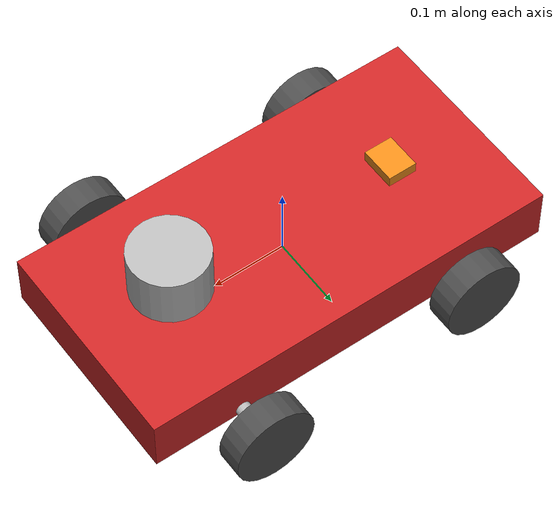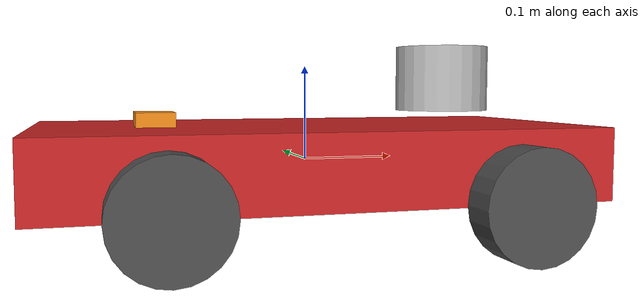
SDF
<sdf version='1.9'>
  <model name='arv'>
    <link name='base_link'>
      <inertial>
        <pose>0 0 0 0 0 0</pose>
        <mass>2.2999999999999998</mass>
        <inertia>
          <ixx>0.01719729166666667</ixx>
          <ixy>0</ixy>
          <ixz>0</ixz>
          <iyy>0.06335062499999998</iyy>
          <iyz>0</iyz>
          <izz>0.06335062499999998</izz>
        </inertia>
      </inertial>
      <collision name='base_link_collision'>
        <pose>0 0 0 0 0 0</pose>
        <geometry>
          <box>
            <size>0.57 0.29 0.075</size>
          </box>
        </geometry>
        <surface>
          <contact>
            <ode/>
          </contact>
          <friction>
            <ode/>
          </friction>
        </surface>
      </collision>
      <visual name='base_link_visual'>
        <pose>0 0 0 0 0 0</pose>
        <geometry>
          <box>
            <size>0.57 0.29 0.075</size>
          </box>
        </geometry>
        <material>
          <script>
            <name>Gazebo/Red</name>
            <uri>file://media/materials/scripts/gazebo.material</uri>
          </script>
          <diffuse>1 0 0.125 1</diffuse>
          <ambient>1 0 0.125 1</ambient>
        </material>
      </visual>
    </link>
    <joint name='LEFT_HINGE_JOINT' type='revolute'>
      <pose relative_to='base_link'>0.162 0.16 -0.0295 -1.570796326794896 0 0</pose>
      <parent>base_link</parent>
      <child>LEFT_HINGE</child>
      <axis>
        <xyz>0 -1 0</xyz>
        <limit>
          <lower>-0.53000000000000003</lower>
          <upper>0.53000000000000003</upper>
          <effort>100</effort>
          <velocity>1</velocity>
        </limit>
        <dynamics>
          <damping>0</damping>
          <friction>0</friction>
          <spring_reference>0</spring_reference>
          <spring_stiffness>0</spring_stiffness>
        </dynamics>
      </axis>
    </joint>
    <link name='LEFT_HINGE'>
      <pose relative_to='LEFT_HINGE_JOINT'>0 0 0 0 0 0</pose>
      <inertial>
        <pose>0 0 0 0 0 0</pose>
        <mass>0.029999999999999999</mass>
        <inertia>
          <ixx>3.0000000000000001e-06</ixx>
          <ixy>0</ixy>
          <ixz>0</ixz>
          <iyy>3.0000000000000001e-06</iyy>
          <iyz>0</iyz>
          <izz>1.5e-06</izz>
        </inertia>
      </inertial>
      <visual name='LEFT_HINGE_visual'>
        <pose>0 0 0 0 0 0</pose>
        <geometry>
          <cylinder>
            <length>0.029999999999999999</length>
            <radius>0.01</radius>
          </cylinder>
        </geometry>
      </visual>
    </link>
    <joint name='LEFT_FRONT_WHEEL_JOINT' type='revolute'>
      <pose relative_to='LEFT_HINGE'>0 0 0.0335 0 0 0</pose>
      <parent>LEFT_HINGE</parent>
      <child>LEFT_FRONT_WHEEL</child>
      <axis>
        <xyz>0 0 1</xyz>
        <limit>
          <effort>100</effort>
          <velocity>200</velocity>
          <lower>-10000000000000000</lower>
          <upper>10000000000000000</upper>
        </limit>
        <dynamics>
          <damping>0</damping>
          <friction>0</friction>
          <spring_reference>0</spring_reference>
          <spring_stiffness>0</spring_stiffness>
        </dynamics>
      </axis>
    </joint>
    <link name='LEFT_FRONT_WHEEL'>
      <pose relative_to='LEFT_FRONT_WHEEL_JOINT'>0 0 0 0 0 0</pose>
      <inertial>
        <pose>0 0 0 0 0 0</pose>
        <mass>0.080000000000000002</mass>
        <inertia>
          <ixx>6.9626666666666669e-05</ixx>
          <ixy>0</ixy>
          <ixz>0</ixz>
          <iyy>6.9626666666666669e-05</iyy>
          <iyz>0</iyz>
          <izz>0.000121</izz>
        </inertia>
      </inertial>
      <collision name='LEFT_FRONT_WHEEL_collision'>
        <pose>0 0 0 0 0 0</pose>
        <geometry>
          <cylinder>
            <length>0.036999999999999998</length>
            <radius>0.055</radius>
          </cylinder>
        </geometry>
        <surface>
          <contact>
            <ode>
              <kp>10000000</kp>
              <kd>1</kd>
              <max_vel>100</max_vel>
              <min_depth>0.0050000000000000001</min_depth>
            </ode>
          </contact>
          <friction>
            <ode>
              <mu>0.5</mu>
              <mu2>0.5</mu2>
              <fdir1>1 0 0</fdir1>
            </ode>
          </friction>
        </surface>
      </collision>
      <visual name='LEFT_FRONT_WHEEL_visual'>
        <pose>0 0 0 0 0 0</pose>
        <geometry>
          <cylinder>
            <length>0.036999999999999998</length>
            <radius>0.055</radius>
          </cylinder>
        </geometry>
        <material>
          <script>
            <name>Gazebo/DarkGrey</name>
            <uri>file://media/materials/scripts/gazebo.material</uri>
          </script>
        </material>
      </visual>
    </link>
    <joint name='LEFT_REAR_WHEEL_JOINT' type='revolute'>
      <pose relative_to='base_link'>-0.162 0.1735 -0.0295 1.570796326794896 0 0</pose>
      <parent>base_link</parent>
      <child>LEFT_REAR_WHEEL</child>
      <axis>
        <xyz>0 0 -1</xyz>
        <limit>
          <effort>100</effort>
          <velocity>200</velocity>
          <lower>-10000000000000000</lower>
          <upper>10000000000000000</upper>
        </limit>
        <dynamics>
          <damping>0</damping>
          <friction>0</friction>
          <spring_reference>0</spring_reference>
          <spring_stiffness>0</spring_stiffness>
        </dynamics>
      </axis>
    </joint>
    <link name='LEFT_REAR_WHEEL'>
      <pose relative_to='LEFT_REAR_WHEEL_JOINT'>0 0 0 0 0 0</pose>
      <inertial>
        <pose>0 0 0 0 0 0</pose>
        <mass>0.080000000000000002</mass>
        <inertia>
          <ixx>6.9626666666666669e-05</ixx>
          <ixy>0</ixy>
          <ixz>0</ixz>
          <iyy>6.9626666666666669e-05</iyy>
          <iyz>0</iyz>
          <izz>0.000121</izz>
        </inertia>
      </inertial>
      <collision name='LEFT_REAR_WHEEL_collision'>
        <pose>0 0 0 0 0 0</pose>
        <geometry>
          <cylinder>
            <length>0.036999999999999998</length>
            <radius>0.055</radius>
          </cylinder>
        </geometry>
        <surface>
          <contact>
            <ode>
              <kp>10000000</kp>
              <kd>1</kd>
              <max_vel>100</max_vel>
              <min_depth>0.0050000000000000001</min_depth>
            </ode>
          </contact>
          <friction>
            <ode>
              <mu>0</mu>
              <mu2>0</mu2>
              <fdir1>1 0 0</fdir1>
            </ode>
          </friction>
        </surface>
      </collision>
      <visual name='LEFT_REAR_WHEEL_visual'>
        <pose>0 0 0 0 0 0</pose>
        <geometry>
          <cylinder>
            <length>0.036999999999999998</length>
            <radius>0.055</radius>
          </cylinder>
        </geometry>
        <material>
          <script>
            <name>Gazebo/DarkGrey</name>
            <uri>file://media/materials/scripts/gazebo.material</uri>
          </script>
        </material>
      </visual>
    </link>
    <joint name='RIGHT_HINGE_JOINT' type='revolute'>
      <pose relative_to='base_link'>0.162 -0.16 -0.0295 -1.570796326794896 0 0</pose>
      <parent>base_link</parent>
      <child>RIGHT_HINGE</child>
      <axis>
        <xyz>0 -1 0</xyz>
        <limit>
          <lower>-0.53000000000000003</lower>
          <upper>0.53000000000000003</upper>
          <effort>100</effort>
          <velocity>1</velocity>
        </limit>
        <dynamics>
          <damping>0</damping>
          <friction>0</friction>
          <spring_reference>0</spring_reference>
          <spring_stiffness>0</spring_stiffness>
        </dynamics>
      </axis>
    </joint>
    <link name='RIGHT_HINGE'>
      <pose relative_to='RIGHT_HINGE_JOINT'>0 0 0 0 0 0</pose>
      <inertial>
        <pose>0 0 0 0 0 0</pose>
        <mass>0.029999999999999999</mass>
        <inertia>
          <ixx>3.0000000000000001e-06</ixx>
          <ixy>0</ixy>
          <ixz>0</ixz>
          <iyy>3.0000000000000001e-06</iyy>
          <iyz>0</iyz>
          <izz>1.5e-06</izz>
        </inertia>
      </inertial>
      <visual name='RIGHT_HINGE_visual'>
        <pose>0 0 0 0 0 0</pose>
        <geometry>
          <cylinder>
            <length>0.029999999999999999</length>
            <radius>0.01</radius>
          </cylinder>
        </geometry>
      </visual>
    </link>
    <joint name='RIGHT_FRONT_WHEEL_JOINT' type='revolute'>
      <pose relative_to='RIGHT_HINGE'>0 0 -0.0335 0 0 0</pose>
      <parent>RIGHT_HINGE</parent>
      <child>RIGHT_FRONT_WHEEL</child>
      <axis>
        <xyz>0 0 1</xyz>
        <limit>
          <effort>100</effort>
          <velocity>200</velocity>
          <lower>-10000000000000000</lower>
          <upper>10000000000000000</upper>
        </limit>
        <dynamics>
          <damping>0</damping>
          <friction>0</friction>
          <spring_reference>0</spring_reference>
          <spring_stiffness>0</spring_stiffness>
        </dynamics>
      </axis>
    </joint>
    <link name='RIGHT_FRONT_WHEEL'>
      <pose relative_to='RIGHT_FRONT_WHEEL_JOINT'>0 0 0 0 0 0</pose>
      <inertial>
        <pose>0 0 0 0 0 0</pose>
        <mass>0.080000000000000002</mass>
        <inertia>
          <ixx>6.9626666666666669e-05</ixx>
          <ixy>0</ixy>
          <ixz>0</ixz>
          <iyy>6.9626666666666669e-05</iyy>
          <iyz>0</iyz>
          <izz>0.000121</izz>
        </inertia>
      </inertial>
      <collision name='RIGHT_FRONT_WHEEL_collision'>
        <pose>0 0 0 0 0 0</pose>
        <geometry>
          <cylinder>
            <length>0.036999999999999998</length>
            <radius>0.055</radius>
          </cylinder>
        </geometry>
        <surface>
          <contact>
            <ode>
              <kp>10000000</kp>
              <kd>1</kd>
              <max_vel>100</max_vel>
              <min_depth>0.0050000000000000001</min_depth>
            </ode>
          </contact>
          <friction>
            <ode>
              <mu>0.5</mu>
              <mu2>0.5</mu2>
              <fdir1>1 0 0</fdir1>
            </ode>
          </friction>
        </surface>
      </collision>
      <visual name='RIGHT_FRONT_WHEEL_visual'>
        <pose>0 0 0 0 0 0</pose>
        <geometry>
          <cylinder>
            <length>0.036999999999999998</length>
            <radius>0.055</radius>
          </cylinder>
        </geometry>
        <material>
          <script>
            <name>Gazebo/DarkGrey</name>
            <uri>file://media/materials/scripts/gazebo.material</uri>
          </script>
        </material>
      </visual>
    </link>
    <joint name='RIGHT_REAR_WHEEL_JOINT' type='revolute'>
      <pose relative_to='base_link'>-0.162 -0.1735 -0.0295 1.570796326794896 0 0</pose>
      <parent>base_link</parent>
      <child>RIGHT_REAR_WHEEL</child>
      <axis>
        <xyz>0 0 -1</xyz>
        <limit>
          <effort>100</effort>
          <velocity>200</velocity>
          <lower>-10000000000000000</lower>
          <upper>10000000000000000</upper>
        </limit>
        <dynamics>
          <damping>0</damping>
          <friction>0</friction>
          <spring_reference>0</spring_reference>
          <spring_stiffness>0</spring_stiffness>
        </dynamics>
      </axis>
    </joint>
    <link name='RIGHT_REAR_WHEEL'>
      <pose relative_to='RIGHT_REAR_WHEEL_JOINT'>0 0 0 0 0 0</pose>
      <inertial>
        <pose>0 0 0 0 0 0</pose>
        <mass>0.080000000000000002</mass>
        <inertia>
          <ixx>6.9626666666666669e-05</ixx>
          <ixy>0</ixy>
          <ixz>0</ixz>
          <iyy>6.9626666666666669e-05</iyy>
          <iyz>0</iyz>
          <izz>0.000121</izz>
        </inertia>
      </inertial>
      <collision name='RIGHT_REAR_WHEEL_collision'>
        <pose>0 0 0 0 0 0</pose>
        <geometry>
          <cylinder>
            <length>0.036999999999999998</length>
            <radius>0.055</radius>
          </cylinder>
        </geometry>
        <surface>
          <contact>
            <ode>
              <kp>10000000</kp>
              <kd>1</kd>
              <max_vel>100</max_vel>
              <min_depth>0.0050000000000000001</min_depth>
            </ode>
          </contact>
          <friction>
            <ode>
              <mu>0</mu>
              <mu2>0</mu2>
              <fdir1>1 0 0</fdir1>
            </ode>
          </friction>
        </surface>
      </collision>
      <visual name='RIGHT_REAR_WHEEL_visual'>
        <pose>0 0 0 0 0 0</pose>
        <geometry>
          <cylinder>
            <length>0.036999999999999998</length>
            <radius>0.055</radius>
          </cylinder>
        </geometry>
        <material>
          <script>
            <name>Gazebo/DarkGrey</name>
            <uri>file://media/materials/scripts/gazebo.material</uri>
          </script>
        </material>
      </visual>
    </link>
    <joint name='imu_joint' type='fixed'>
      <pose relative_to='base_link'>-0.162 0 0.0425 0 0 0</pose>
      <parent>base_link</parent>
      <child>imu_link</child>
      <axis>
        <dynamics>
          <spring_reference>0</spring_reference>
          <spring_stiffness>0</spring_stiffness>
        </dynamics>
        <xyz>0 0 1</xyz>
        <limit>
          <lower>-10000000000000000</lower>
          <upper>10000000000000000</upper>
        </limit>
      </axis>
      <physics>
        <ode>
          <limit>
            <cfm>0</cfm>
            <erp>0.20000000000000001</erp>
          </limit>
        </ode>
      </physics>
    </joint>
    <link name='imu_link'>
      <pose relative_to='imu_joint'>0 0 0 0 0 0</pose>
      <inertial>
        <pose>0 0 0 0 0 0</pose>
        <mass>0.01</mass>
        <inertia>
          <ixx>0.0001</ixx>
          <ixy>0</ixy>
          <ixz>0</ixz>
          <iyy>9.9999999999999995e-07</iyy>
          <iyz>0</iyz>
          <izz>0.0001</izz>
        </inertia>
      </inertial>
      <collision name='imu_link_collision'>
        <pose>0 0 0 0 0 0</pose>
        <geometry>
          <box>
            <size>0.001 0.001 0.001</size>
          </box>
        </geometry>
        <surface>
          <contact>
            <ode/>
          </contact>
          <friction>
            <ode/>
          </friction>
        </surface>
      </collision>
      <visual name='imu_link_visual'>
        <pose>0 0 0 0 0 0</pose>
        <geometry>
          <box>
            <size>0.04 0.05 0.02</size>
          </box>
        </geometry>
        <material>
          <script>
            <name>Gazebo/Orange</name>
            <uri>file://media/materials/scripts/gazebo.material</uri>
          </script>
        </material>
      </visual>
      <sensor name='imu_sensor' type='imu'>
        <always_on>true</always_on>
        <update_rate>400</update_rate>
        <visualize>true</visualize>
        <topic>/imu</topic>
        <ignition_frame_id>arv/imu_link</ignition_frame_id>
      </sensor>
    </link>
    <joint name='lidar_joint' type='fixed'>
      <pose relative_to='base_link'>0.162 0 0.08749999999999999 0 0 0</pose>
      <parent>base_link</parent>
      <child>lidar_link</child>
      <axis>
        <dynamics>
          <spring_reference>0</spring_reference>
          <spring_stiffness>0</spring_stiffness>
        </dynamics>
        <xyz>0 0 1</xyz>
        <limit>
          <lower>-10000000000000000</lower>
          <upper>10000000000000000</upper>
        </limit>
      </axis>
      <physics>
        <ode>
          <limit>
            <cfm>0</cfm>
            <erp>0.20000000000000001</erp>
          </limit>
        </ode>
      </physics>
    </joint>
    <link name='lidar_link'>
      <pose relative_to='lidar_joint'>0 0 0 0 0 0</pose>
      <inertial>
        <pose>0 0 0 0 0 0</pose>
        <mass>0.14999999999999999</mass>
        <inertia>
          <ixx>0.00016410712499999999</ixx>
          <ixy>0</ixy>
          <ixz>0</ixz>
          <iyy>0.00016410712499999999</iyy>
          <iyz>0</iyz>
          <izz>0.00019969200000000001</izz>
        </inertia>
      </inertial>
      <collision name='lidar_link_collision'>
        <pose>0 0 0 0 0 0</pose>
        <geometry>
          <cylinder>
            <length>0.0717</length>
            <radius>0.0516</radius>
          </cylinder>
        </geometry>
        <surface>
          <contact>
            <ode/>
          </contact>
          <friction>
            <ode/>
          </friction>
        </surface>
      </collision>
      <visual name='lidar_link_visual'>
        <pose>0 0 0 0 0 0</pose>
        <geometry>
          <cylinder>
            <length>0.0717</length>
            <radius>0.0516</radius>
          </cylinder>
        </geometry>
      </visual>
      <sensor name='gpu_lidar' type='gpu_lidar'>
        <topic>/scan</topic>
        <update_rate>400</update_rate>
        <lidar>
          <scan>
            <horizontal>
              <samples>640</samples>
              <resolution>1</resolution>
              <min_angle>-1.396263</min_angle>
              <max_angle>1.396263</max_angle>
            </horizontal>
            <vertical>
              <samples>1</samples>
              <resolution>1</resolution>
              <min_angle>0</min_angle>
              <max_angle>0</max_angle>
            </vertical>
          </scan>
          <range>
            <min>0.080000000000000002</min>
            <max>10</max>
            <resolution>0.01</resolution>
          </range>
          <noise>
            <type>gaussian</type>
            <mean>0</mean>
            <stddev>0.001</stddev>
          </noise>
        </lidar>
        <visualize>true</visualize>
        <ignition_frame_id>arv/lidar_link</ignition_frame_id>
        <alwaysOn>1</alwaysOn>
      </sensor>
    </link>
    <plugin name='ignition::gazebo::systems::AckermannSteering' filename='ignition-gazebo-ackermann-steering-system'>
      <left_joint>LEFT_FRONT_WHEEL_JOINT</left_joint>
      <left_joint>LEFT_REAR_WHEEL_JOINT</left_joint>
      <right_joint>RIGHT_FRONT_WHEEL_JOINT</right_joint>
      <right_joint>RIGHT_REAR_WHEEL_JOINT</right_joint>
      <left_steering_joint>LEFT_HINGE_JOINT</left_steering_joint>
      <right_steering_joint>RIGHT_HINGE_JOINT</right_steering_joint>
      <wheel_separation>0.47</wheel_separation>
      <kingpin_width>0.47</kingpin_width>
      <wheel_base>0.324</wheel_base>
      <steering_limit>0.5</steering_limit>
      <wheel_radius>0.15</wheel_radius>
      <odom_publish_frequency>50</odom_publish_frequency>
      <min_velocity>-10</min_velocity>
      <max_velocity>10</max_velocity>
      <min_acceleration>-10</min_acceleration>
      <max_acceleration>10</max_acceleration>
      <min_jerk>-10</min_jerk>
      <max_jerk>10</max_jerk>
      <odom_topic>arv/odom</odom_topic>
    </plugin>
    <frame name='base_to_base_inertia' attached_to='base_link'>
      <pose>0 0 0 0 -0 0</pose>
    </frame>
    <frame name='base_inertia' attached_to='base_to_base_inertia'/>
  </model>
</sdf>
